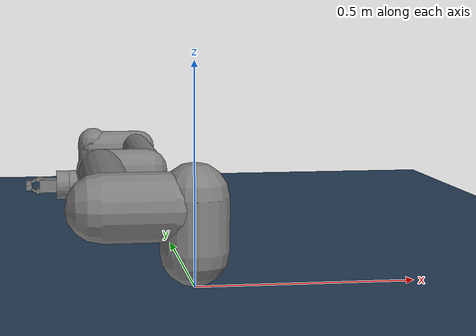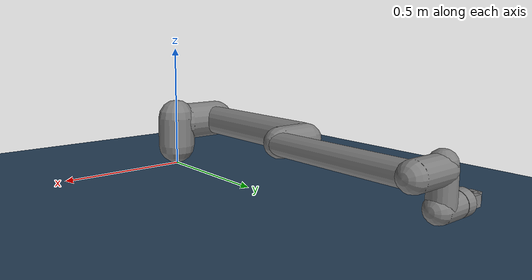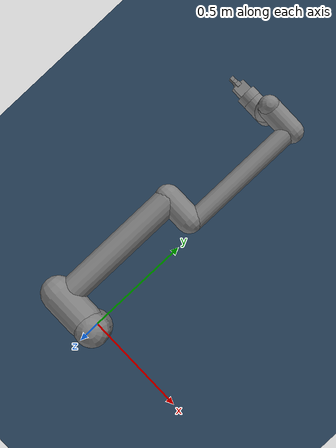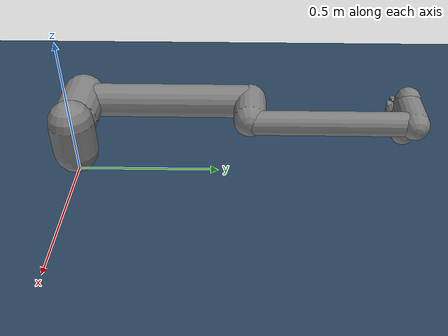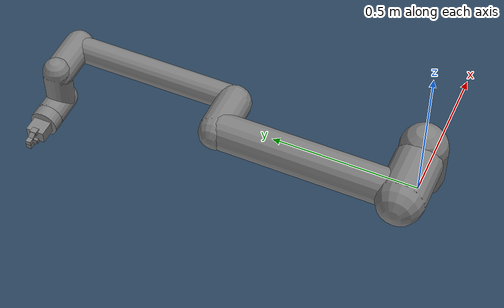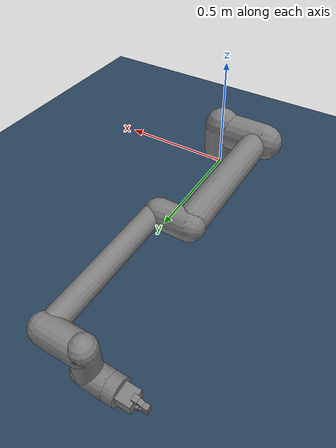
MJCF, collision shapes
<mujoco model="ur10e scene">
  <include file="ur10e_panda_gripper.xml"/>

  <statistic center="0.4 0 0.4" extent="1"/>

  <visual>
    <headlight diffuse="0.6 0.6 0.6" ambient="0.1 0.1 0.1" specular="0 0 0"/>
    <rgba haze="0.15 0.25 0.35 1"/>
    <global azimuth="120" elevation="-20"/>
  </visual>

  <asset>
    <texture type="skybox" builtin="gradient" rgb1="0.3 0.5 0.7" rgb2="0 0 0" width="512" height="3072"/>
    <texture type="2d" name="groundplane" builtin="checker" mark="edge" rgb1="0.2 0.3 0.4" rgb2="0.1 0.2 0.3"
      markrgb="0.8 0.8 0.8" width="300" height="300"/>
    <material name="groundplane" texture="groundplane" texuniform="true" texrepeat="5 5" reflectance="0.2"/>
  </asset>

  <worldbody>
    <light pos="0 0 1.5" dir="0 0 -1" directional="true"/>
    <geom name="floor" size="0 0 0.05" type="plane" material="groundplane"/>
  </worldbody>
</mujoco>

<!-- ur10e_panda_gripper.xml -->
<mujoco model="ur10e">
  <compiler angle="radian" meshdir="assets" autolimits="true"/>

  <option integrator="implicitfast"/>

  <default>
    <default class="ur10e">
      <material specular="0.5" shininess="0.25"/>
      <joint axis="0 1 0" range="-6.28319 6.28319" armature="0.1"/>
      <position ctrlrange="-6.2831 6.2831"/>
      <general biastype="affine" ctrlrange="-6.2831 6.2831" gainprm="5000" biasprm="0 -5000 -500"/>
      <default class="size4">
        <joint damping="10"/>
        <general forcerange="-330 330"/>
      </default>
      <default class="size3">
        <joint damping="5"/>
        <general forcerange="-150 150"/>
        <default class="size3_limited">
          <joint range="-3.1415 3.1415"/>
          <general ctrlrange="-3.1415 3.1415"/>
        </default>
      </default>
      <default class="size2">
        <joint damping="2"/>
        <general forcerange="-56 56"/>
      </default>
      <default class="visual">
        <geom type="mesh" contype="0" conaffinity="0" group="2"/>
      </default>
      <default class="collision">
        <geom type="capsule" group="3"/>
        <default class="eef_collision">
          <geom type="cylinder"/>
        </default>
      </default>
      <site size="0.001" rgba="0.5 0.5 0.5 0.3" group="4"/>
    </default>
  </default>

  <asset>
    <material class="ur10e" name="black" rgba="0.033 0.033 0.033 1"/>
    <material class="ur10e" name="jointgray" rgba="0.278 0.278 0.278 1"/>
    <material class="ur10e" name="linkgray" rgba="0.82 0.82 0.82 1"/>
    <material class="ur10e" name="urblue" rgba="0.49 0.678 0.8 1"/>

    <mesh file="base_0.obj"/>
    <mesh file="base_1.obj"/>
    <mesh file="shoulder_0.obj"/>
    <mesh file="shoulder_1.obj"/>
    <mesh file="shoulder_2.obj"/>
    <mesh file="upperarm_0.obj"/>
    <mesh file="upperarm_1.obj"/>
    <mesh file="upperarm_2.obj"/>
    <mesh file="upperarm_3.obj"/>
    <mesh file="forearm_0.obj"/>
    <mesh file="forearm_1.obj"/>
    <mesh file="forearm_2.obj"/>
    <mesh file="forearm_3.obj"/>
    <mesh file="wrist1_0.obj"/>
    <mesh file="wrist1_1.obj"/>
    <mesh file="wrist1_2.obj"/>
    <mesh file="wrist2_0.obj"/>
    <mesh file="wrist2_1.obj"/>
    <mesh file="wrist2_2.obj"/>
    <mesh file="wrist3.obj"/>
    <mesh name="panda_hand_mesh" file="gripper/hand.stl"/>
    <mesh name="panda_finger_mesh" file="gripper/finger.stl"/>
  </asset>

  <worldbody>
    <light name="spotlight" mode="targetbodycom" target="wrist_2_link" pos="0 -1 2"/>
    <body name="base" quat="1 0 0 1" childclass="ur10e">
      <inertial mass="4.0" pos="0 0 0" diaginertia="0.0061063308908 0.0061063308908 0.01125"/>
      <geom mesh="base_0" material="black" class="visual"/>
      <geom mesh="base_1" material="jointgray" class="visual"/>
      <body name="shoulder_link" pos="0 0 0.181">
        <inertial pos="0 0 0" mass="7.778" diaginertia="0.0314743 0.0314743 0.0218756"/>
        <joint name="shoulder_pan_joint" class="size4" axis="0 0 1"/>
        <geom mesh="shoulder_0" material="urblue" class="visual"/>
        <geom mesh="shoulder_1" material="black" class="visual"/>
        <geom mesh="shoulder_2" material="jointgray" class="visual"/>
        <geom class="collision" size="0.078 0.06" pos="0 0 -0.04"/>
        <body name="upper_arm_link" pos="0 0.176 0" quat="1 0 1 0">
          <inertial pos="0 0 0.3065" mass="12.93" diaginertia="0.423074 0.423074 0.0363656"/>
          <joint name="shoulder_lift_joint" class="size4"/>
          <geom mesh="upperarm_0" material="black" class="visual"/>
          <geom mesh="upperarm_1" material="jointgray" class="visual"/>
          <geom mesh="upperarm_2" material="urblue" class="visual"/>
          <geom mesh="upperarm_3" material="linkgray" class="visual"/>
          <geom class="collision" pos="0 -0.05 0" quat="1 1 0 0" size="0.078 0.08"/>
          <geom class="collision" size="0.06 0.3" pos="0 0 0.3"/>
          <body name="forearm_link" pos="0 -0.137 0.613">
            <inertial pos="0 0 0.2855" mass="3.87" diaginertia="0.11059 0.11059 0.0108844"/>
            <joint name="elbow_joint" class="size3_limited"/>
            <geom mesh="forearm_0" material="urblue" class="visual"/>
            <geom mesh="forearm_1" material="black" class="visual"/>
            <geom mesh="forearm_2" material="jointgray" class="visual"/>
            <geom mesh="forearm_3" material="linkgray" class="visual"/>
            <geom class="collision" pos="0 0.08 0" quat="1 1 0 0" size="0.058 0.065"/>
            <geom class="collision" size="0.043 0.28" pos="0 0 0.29"/>
            <body name="wrist_1_link" pos="0 0 0.571" quat="1 0 1 0">
              <inertial pos="0 0.135 0" quat="0.5 0.5 -0.5 0.5" mass="1.96"
                diaginertia="0.0055125 0.00510825 0.00510825"/>
              <joint name="wrist_1_joint" class="size2"/>
              <geom mesh="wrist1_0" material="black" class="visual"/>
              <geom mesh="wrist1_1" material="urblue" class="visual"/>
              <geom mesh="wrist1_2" material="jointgray" class="visual"/>
              <geom class="collision" pos="0 0.06 0" quat="1 1 0 0" size="0.05 0.07"/>
              <body name="wrist_2_link" pos="0 0.135 0">
                <inertial pos="0 0 0.12" quat="0.5 0.5 -0.5 0.5" mass="1.96"
                  diaginertia="0.0055125 0.00510825 0.00510825"/>
                <joint name="wrist_2_joint" axis="0 0 1" class="size2"/>
                <geom mesh="wrist2_0" material="black" class="visual"/>
                <geom mesh="wrist2_1" material="urblue" class="visual"/>
                <geom mesh="wrist2_2" material="jointgray" class="visual"/>
                <geom class="collision" size="0.046 0.065" pos="0 0 0.05"/>
                <geom class="collision" pos="0 0.028 0.12" quat="1 1 0 0" size="0.046 0.043"/>
                <body name="wrist_3_link" pos="0 0 0.12">
                  <inertial pos="0 0.092 0" quat="0 1 -1 0" mass="0.202"
                    diaginertia="0.000204525 0.000144346 0.000144346"/>
                  <joint name="wrist_3_joint" class="size2"/>
                  <geom material="linkgray" mesh="wrist3" class="visual"/>
                  <geom class="eef_collision" pos="0 0.097 0" quat="1 1 0 0" size="0.046 0.02"/>
                  <site name="attachment_site" pos="0 0.1 0" quat="-1 1 0 0"/>
                  <body name="panda_hand" pos="0 0.1 0" quat="-1 1 0 0">
                    <inertial pos="-0.01 0 0.03" mass="0.73" diaginertia="0.001 0.0025 0.0017"/>
                    <geom mesh="panda_hand_mesh" class="visual" material="linkgray"/>
                    <geom type="box" pos="0 0 0.03" size="0.03 0.02 0.04" group="3"/>
                    <body name="panda_hand_tcp" pos="0 0 0.1034"/>
                    <body name="panda_leftfinger" pos="0 0 0.0584">
                      <inertial pos="0 0 0" mass="0.015" diaginertia="2.375e-06 2.375e-06 7.5e-07"/>
                      <joint name="panda_finger_joint1" type="slide" axis="0 1 0" range="0 0.04" damping="0.3"/>
                      <geom mesh="panda_finger_mesh" class="visual" material="linkgray"/>
                      <geom type="box" pos="0 0.0185 0.011" size="0.011 0.0075 0.01" group="3"/>
                      <geom type="box" pos="0 0.0068 0.0022" size="0.011 0.0044 0.0019" group="3"/>
                      <geom type="box" pos="0 0.0159 0.02835" quat="0.9659258 0.258819 0 0" size="0.00875 0.0035 0.01175" group="3"/>
                      <geom type="box" pos="0 0.00758 0.04525" size="0.00875 0.0076 0.00925" group="3"/>
                    </body>
                    <body name="panda_rightfinger" pos="0 0 0.0584">
                      <inertial pos="0 0 0" mass="0.015" diaginertia="2.375e-06 2.375e-06 7.5e-07"/>
                      <joint name="panda_finger_joint2" type="slide" axis="0 -1 0" range="0 0.04" damping="0.3"/>
                      <geom mesh="panda_finger_mesh" class="visual" material="linkgray" quat="0 0 0 1"/>
                      <geom type="box" pos="0 -0.0185 0.011" size="0.011 0.0075 0.01" group="3"/>
                      <geom type="box" pos="0 -0.0068 0.0022" size="0.011 0.0044 0.0019" group="3"/>
                      <geom type="box" pos="0 -0.0159 0.02835" quat="0.9659258 -0.258819 0 0" size="0.00875 0.0035 0.01175" group="3"/>
                      <geom type="box" pos="0 -0.00758 0.04525" size="0.00875 0.0076 0.00925" group="3"/>
                    </body>
                  </body>
                </body>
              </body>
            </body>
          </body>
        </body>
      </body>
    </body>
  </worldbody>

  <actuator>
    <general class="size4" name="shoulder_pan" joint="shoulder_pan_joint"/>
    <general class="size4" name="shoulder_lift" joint="shoulder_lift_joint"/>
    <general class="size3_limited" name="elbow" joint="elbow_joint"/>
    <general class="size2" name="wrist_1" joint="wrist_1_joint"/>
    <general class="size2" name="wrist_2" joint="wrist_2_joint"/>
    <general class="size2" name="wrist_3" joint="wrist_3_joint"/>
    <position name="panda_finger_1" joint="panda_finger_joint1" kp="1000" ctrlrange="0 0.04" forcerange="-100 100"/>
    <position name="panda_finger_2" joint="panda_finger_joint2" kp="1000" ctrlrange="0 0.04" forcerange="-100 100"/>
  </actuator>

  <keyframe>
    <key name="home" qpos="-1.5708 -1.5708 1.5708 -1.5708 -1.5708 0 0.04 0.04" ctrl="-1.5708 -1.5708 1.5708 -1.5708 -1.5708 0 0.04 0.04"/>
  </keyframe>
</mujoco>
